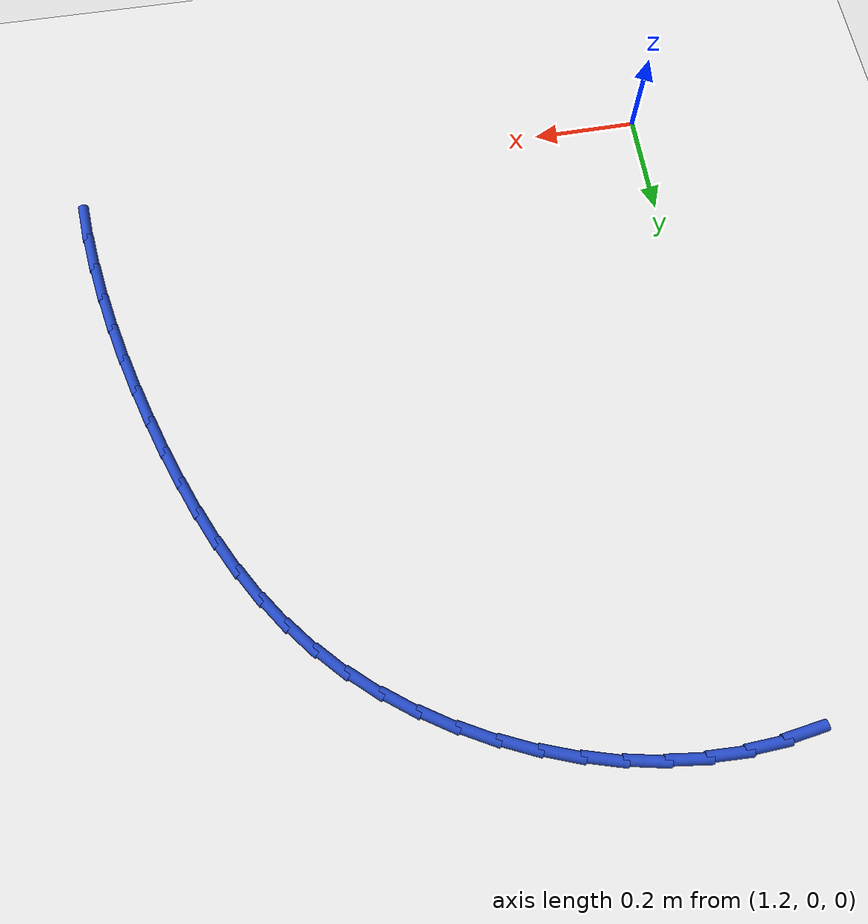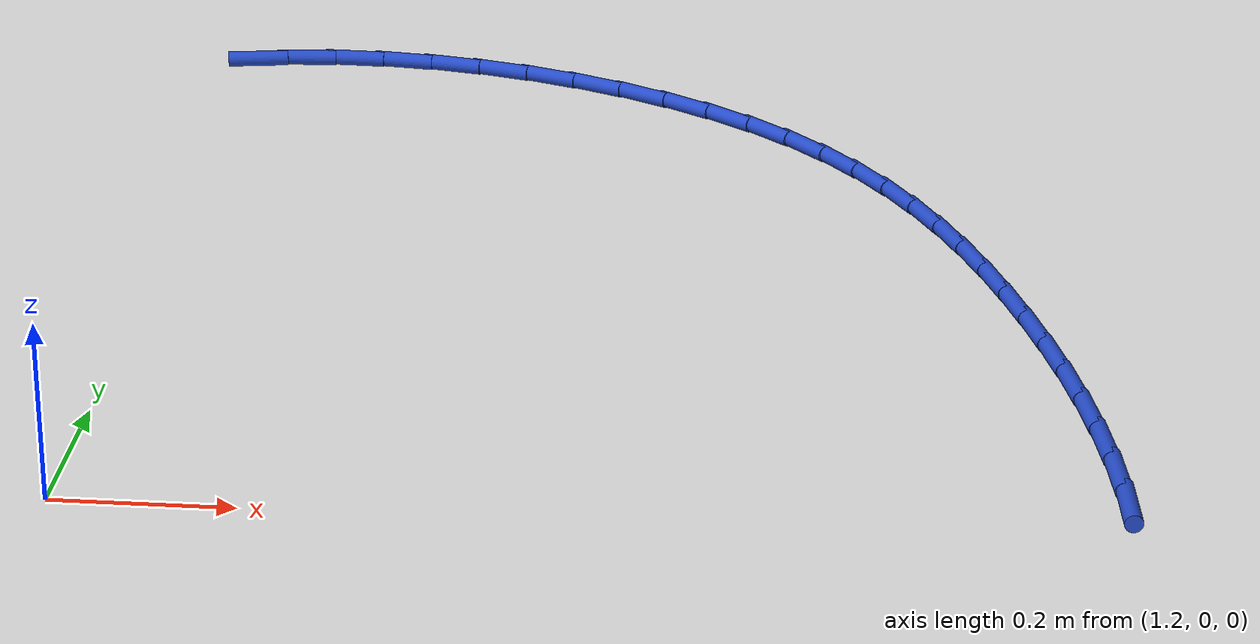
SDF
<sdf version="1.6">
 <world name="default">
  <model name="ground_plane">
   <static>1</static>
   <link name="link">
    <collision name="collision">
     <geometry><plane><normal>0 0 1</normal><size>100 100</size></plane></geometry>
     <surface><friction><ode><mu>100</mu><mu2>50</mu2></ode></friction></surface>
    </collision>
    <visual name="visual">
     <cast_shadows>0</cast_shadows>
     <geometry><plane><normal>0 0 1</normal><size>100 100</size></plane></geometry>
     <material>
      <script><uri>file://media/materials/scripts/gazebo.material</uri><name>Gazebo/WhiteGlow</name></script>
     </material>
    </visual>
   </link>
  </model>
  <model name="line">
   <link name="link_28">
    <pose>1.1943735471157382 1.2246333747343228 0.01 0 1.57 0.15824912851040113</pose>
    <collision name="collision">
     <geometry><cylinder><radius>0.01</radius><length>0.08</length></cylinder></geometry>
    </collision>
    <visual name="visual">
     <material>
      <script><name>Gazebo/Blue</name><uri>file://media/materials/scripts/gazebo.material</uri></script>
     </material>
     <geometry><cylinder><radius>0.01</radius><length>0.08</length></cylinder></geometry>
    </visual>
   </link>
   <link name="link_29">
    <pose>1.2585687431947317 1.234877868573096 0.01 0 1.57 0.05998212193106873</pose>
    <collision name="collision">
     <geometry><cylinder><radius>0.01</radius><length>0.08</length></cylinder></geometry>
    </collision>
    <visual name="visual">
     <material>
      <script><name>Gazebo/Blue</name><uri>file://media/materials/scripts/gazebo.material</uri></script>
     </material>
     <geometry><cylinder><radius>0.01</radius><length>0.08</length></cylinder></geometry>
    </visual>
   </link>
   <link name="link_30">
    <pose>1.3243550883895718 1.2388286123565146 0.01 0 1.57 -0.03090917757515493</pose>
    <collision name="collision">
     <geometry><cylinder><radius>0.01</radius><length>0.08</length></cylinder></geometry>
    </collision>
    <visual name="visual">
     <material>
      <script><name>Gazebo/Blue</name><uri>file://media/materials/scripts/gazebo.material</uri></script>
     </material>
     <geometry><cylinder><radius>0.01</radius><length>0.08</length></cylinder></geometry>
    </visual>
   </link>
   <link name="link_31">
    <pose>1.3911460125297228 1.2367635021268506 0.01 0 1.57 -0.11558416410384603</pose>
    <collision name="collision">
     <geometry><cylinder><radius>0.01</radius><length>0.08</length></cylinder></geometry>
    </collision>
    <visual name="visual">
     <material>
      <script><name>Gazebo/Blue</name><uri>file://media/materials/scripts/gazebo.material</uri></script>
     </material>
     <geometry><cylinder><radius>0.01</radius><length>0.08</length></cylinder></geometry>
    </visual>
   </link>
   <link name="link_32">
    <pose>1.4583549454446494 1.2289604339263744 0.01 0 1.57 -0.19531581050713295</pose>
    <collision name="collision">
     <geometry><cylinder><radius>0.01</radius><length>0.08</length></cylinder></geometry>
    </collision>
    <visual name="visual">
     <material>
      <script><name>Gazebo/Blue</name><uri>file://media/materials/scripts/gazebo.material</uri></script>
     </material>
     <geometry><cylinder><radius>0.01</radius><length>0.08</length></cylinder></geometry>
    </visual>
   </link>
   <link name="link_33">
    <pose>1.5253953169638157 1.215697303797358 0.01 0 1.57 -0.2714051873826836</pose>
    <collision name="collision">
     <geometry><cylinder><radius>0.01</radius><length>0.08</length></cylinder></geometry>
    </collision>
    <visual name="visual">
     <material>
      <script><name>Gazebo/Blue</name><uri>file://media/materials/scripts/gazebo.material</uri></script>
     </material>
     <geometry><cylinder><radius>0.01</radius><length>0.08</length></cylinder></geometry>
    </visual>
   </link>
   <link name="link_34">
    <pose>1.5916805569166859 1.1972520077820727 0.01 0 1.57 -0.3451451081822132</pose>
    <collision name="collision">
     <geometry><cylinder><radius>0.01</radius><length>0.08</length></cylinder></geometry>
    </collision>
    <visual name="visual">
     <material>
      <script><name>Gazebo/Blue</name><uri>file://media/materials/scripts/gazebo.material</uri></script>
     </material>
     <geometry><cylinder><radius>0.01</radius><length>0.08</length></cylinder></geometry>
    </visual>
   </link>
   <link name="link_35">
    <pose>1.6566240951327253 1.1739024419227901 0.01 0 1.57 -0.4178155056546058</pose>
    <collision name="collision">
     <geometry><cylinder><radius>0.01</radius><length>0.08</length></cylinder></geometry>
    </collision>
    <visual name="visual">
     <material>
      <script><name>Gazebo/Blue</name><uri>file://media/materials/scripts/gazebo.material</uri></script>
     </material>
     <geometry><cylinder><radius>0.01</radius><length>0.08</length></cylinder></geometry>
    </visual>
   </link>
   <link name="link_36">
    <pose>1.719639361441397 1.1459265022617813 0.01 0 1.57 -0.4906972851280054</pose>
    <collision name="collision">
     <geometry><cylinder><radius>0.01</radius><length>0.08</length></cylinder></geometry>
    </collision>
    <visual name="visual">
     <material>
      <script><name>Gazebo/Blue</name><uri>file://media/materials/scripts/gazebo.material</uri></script>
     </material>
     <geometry><cylinder><radius>0.01</radius><length>0.08</length></cylinder></geometry>
    </visual>
   </link>
   <link name="link_37">
    <pose>1.7801397856721661 1.1136020848413177 0.01 0 1.57 -0.5650950863593046</pose>
    <collision name="collision">
     <geometry><cylinder><radius>0.01</radius><length>0.08</length></cylinder></geometry>
    </collision>
    <visual name="visual">
     <material>
      <script><name>Gazebo/Blue</name><uri>file://media/materials/scripts/gazebo.material</uri></script>
     </material>
     <geometry><cylinder><radius>0.01</radius><length>0.08</length></cylinder></geometry>
    </visual>
   </link>
   <link name="link_38">
    <pose>1.8375387976544961 1.0772070857036709 0.01 0 1.57 -0.6423611532248215</pose>
    <collision name="collision">
     <geometry><cylinder><radius>0.01</radius><length>0.08</length></cylinder></geometry>
    </collision>
    <visual name="visual">
     <material>
      <script><name>Gazebo/Blue</name><uri>file://media/materials/scripts/gazebo.material</uri></script>
     </material>
     <geometry><cylinder><radius>0.01</radius><length>0.08</length></cylinder></geometry>
    </visual>
   </link>
   <link name="link_39">
    <pose>1.8912498272178524 1.0370194008911118 0.01 0 1.57 -0.7239099996223158</pose>
    <collision name="collision">
     <geometry><cylinder><radius>0.01</radius><length>0.08</length></cylinder></geometry>
    </collision>
    <visual name="visual">
     <material>
      <script><name>Gazebo/Blue</name><uri>file://media/materials/scripts/gazebo.material</uri></script>
     </material>
     <geometry><cylinder><radius>0.01</radius><length>0.08</length></cylinder></geometry>
    </visual>
   </link>
   <link name="link_40">
    <pose>1.9406864957181849 0.9933169163018857 0.01 0 1.57 -0.8088451748209496</pose>
    <collision name="collision">
     <geometry><cylinder><radius>0.01</radius><length>0.08</length></cylinder></geometry>
    </collision>
    <visual name="visual">
     <material>
      <script><name>Gazebo/Blue</name><uri>file://media/materials/scripts/gazebo.material</uri></script>
     </material>
     <geometry><cylinder><radius>0.01</radius><length>0.08</length></cylinder></geometry>
    </visual>
   </link>
   <link name="link_41">
    <pose>1.985486062356286 0.9463656730583296 0.01 0 1.57 -0.8902248833327521</pose>
    <collision name="collision">
     <geometry><cylinder><radius>0.01</radius><length>0.08</length></cylinder></geometry>
    </collision>
    <visual name="visual">
     <material>
      <script><name>Gazebo/Blue</name><uri>file://media/materials/scripts/gazebo.material</uri></script>
     </material>
     <geometry><cylinder><radius>0.01</radius><length>0.08</length></cylinder></geometry>
    </visual>
   </link>
   <link name="link_42">
    <pose>2.0259410410025196 0.8963970073126595 0.01 0 1.57 -0.9653107211206913</pose>
    <collision name="collision">
     <geometry><cylinder><radius>0.01</radius><length>0.08</length></cylinder></geometry>
    </collision>
    <visual name="visual">
     <material>
      <script><name>Gazebo/Blue</name><uri>file://media/materials/scripts/gazebo.material</uri></script>
     </material>
     <geometry><cylinder><radius>0.01</radius><length>0.08</length></cylinder></geometry>
    </visual>
   </link>
   <link name="link_43">
    <pose>2.062463329988079 0.8436359321272486 0.01 0 1.57 -1.0329801338505897</pose>
    <collision name="collision">
     <geometry><cylinder><radius>0.01</radius><length>0.08</length></cylinder></geometry>
    </collision>
    <visual name="visual">
     <material>
      <script><name>Gazebo/Blue</name><uri>file://media/materials/scripts/gazebo.material</uri></script>
     </material>
     <geometry><cylinder><radius>0.01</radius><length>0.08</length></cylinder></geometry>
    </visual>
   </link>
   <link name="link_44">
    <pose>2.0954648276441583 0.7883074605644698 0.01 0 1.57 -1.0925915169575326</pose>
    <collision name="collision">
     <geometry><cylinder><radius>0.01</radius><length>0.08</length></cylinder></geometry>
    </collision>
    <visual name="visual">
     <material>
      <script><name>Gazebo/Blue</name><uri>file://media/materials/scripts/gazebo.material</uri></script>
     </material>
     <geometry><cylinder><radius>0.01</radius><length>0.08</length></cylinder></geometry>
    </visual>
   </link>
   <link name="link_45">
    <pose>2.1253574323019513 0.7306366056866956 0.01 0 1.57 -1.1439034967666208</pose>
    <collision name="collision">
     <geometry><cylinder><radius>0.01</radius><length>0.08</length></cylinder></geometry>
    </collision>
    <visual name="visual">
     <material>
      <script><name>Gazebo/Blue</name><uri>file://media/materials/scripts/gazebo.material</uri></script>
     </material>
     <geometry><cylinder><radius>0.01</radius><length>0.08</length></cylinder></geometry>
    </visual>
   </link>
   <link name="link_46">
    <pose>2.1525530422926527 0.6708483805562995 0.01 0 1.57 -1.186964099256359</pose>
    <collision name="collision">
     <geometry><cylinder><radius>0.01</radius><length>0.08</length></cylinder></geometry>
    </collision>
    <visual name="visual">
     <material>
      <script><name>Gazebo/Blue</name><uri>file://media/materials/scripts/gazebo.material</uri></script>
     </material>
     <geometry><cylinder><radius>0.01</radius><length>0.08</length></cylinder></geometry>
    </visual>
   </link>
   <link name="link_47">
    <pose>2.1774635559474547 0.6091677982356537 0.01 0 1.57 -1.2220015375112812</pose>
    <collision name="collision">
     <geometry><cylinder><radius>0.01</radius><length>0.08</length></cylinder></geometry>
    </collision>
    <visual name="visual">
     <material>
      <script><name>Gazebo/Blue</name><uri>file://media/materials/scripts/gazebo.material</uri></script>
     </material>
     <geometry><cylinder><radius>0.01</radius><length>0.08</length></cylinder></geometry>
    </visual>
   </link>
   <link name="link_48">
    <pose>2.200500871597554 0.5458198717871315 0.01 0 1.57 -1.2502359497855249</pose>
    <collision name="collision">
     <geometry><cylinder><radius>0.01</radius><length>0.08</length></cylinder></geometry>
    </collision>
    <visual name="visual">
     <material>
      <script><name>Gazebo/Blue</name><uri>file://media/materials/scripts/gazebo.material</uri></script>
     </material>
     <geometry><cylinder><radius>0.01</radius><length>0.08</length></cylinder></geometry>
    </visual>
   </link>
   <link name="link_49">
    <pose>2.2220111763828276 0.4810320291558377 0.01 0 1.57 -1.2776601072536788</pose>
    <collision name="collision">
     <geometry><cylinder><radius>0.01</radius><length>0.08</length></cylinder></geometry>
    </collision>
    <visual name="visual">
     <material>
      <script><name>Gazebo/Blue</name><uri>file://media/materials/scripts/gazebo.material</uri></script>
     </material>
     <geometry><cylinder><radius>0.01</radius><length>0.08</length></cylinder></geometry>
    </visual>
   </link>
   <link name="link_50">
    <pose>2.241927573051922 0.4150468791159458 0.01 0 1.57 -1.3067602091544612</pose>
    <collision name="collision">
     <geometry><cylinder><radius>0.01</radius><length>0.08</length></cylinder></geometry>
    </collision>
    <visual name="visual">
     <material>
      <script><name>Gazebo/Blue</name><uri>file://media/materials/scripts/gazebo.material</uri></script>
     </material>
     <geometry><cylinder><radius>0.01</radius><length>0.08</length></cylinder></geometry>
    </visual>
   </link>
   <link name="link_51">
    <pose>2.260023033228986 0.34811291525180654 0.01 0 1.57 -1.3378404046645993</pose>
    <collision name="collision">
     <geometry><cylinder><radius>0.01</radius><length>0.08</length></cylinder></geometry>
    </collision>
    <visual name="visual">
     <material>
      <script><name>Gazebo/Blue</name><uri>file://media/materials/scripts/gazebo.material</uri></script>
     </material>
     <geometry><cylinder><radius>0.01</radius><length>0.08</length></cylinder></geometry>
    </visual>
   </link>
   <link name="link_52">
    <pose>2.2760701775344447 0.28047864404713874 0.01 0 1.57 -1.3712235561826975</pose>
    <collision name="collision">
     <geometry><cylinder><radius>0.01</radius><length>0.08</length></cylinder></geometry>
    </collision>
    <visual name="visual">
     <material>
      <script><name>Gazebo/Blue</name><uri>file://media/materials/scripts/gazebo.material</uri></script>
     </material>
     <geometry><cylinder><radius>0.01</radius><length>0.08</length></cylinder></geometry>
    </visual>
   </link>
   <link name="link_53">
    <pose>2.2898416265887187 0.2123925719856612 0.01 0 1.57 -1.4072607418451943</pose>
    <collision name="collision">
     <geometry><cylinder><radius>0.01</radius><length>0.08</length></cylinder></geometry>
    </collision>
    <visual name="visual">
     <material>
      <script><name>Gazebo/Blue</name><uri>file://media/materials/scripts/gazebo.material</uri></script>
     </material>
     <geometry><cylinder><radius>0.01</radius><length>0.08</length></cylinder></geometry>
    </visual>
   </link>
   <link name="link_54">
    <pose>2.301110001012231 0.1441032055510927 0.01 0 1.57 -1.4463345514984844</pose>
    <collision name="collision">
     <geometry><cylinder><radius>0.01</radius><length>0.08</length></cylinder></geometry>
    </collision>
    <visual name="visual">
     <material>
      <script><name>Gazebo/Blue</name><uri>file://media/materials/scripts/gazebo.material</uri></script>
     </material>
     <geometry><cylinder><radius>0.01</radius><length>0.08</length></cylinder></geometry>
    </visual>
   </link>
   <link name="link_55">
    <pose>2.3096479214254027 0.07585905122715202 0.01 0 1.57 -1.48886022117675</pose>
    <collision name="collision">
     <geometry><cylinder><radius>0.01</radius><length>0.08</length></cylinder></geometry>
    </collision>
    <visual name="visual">
     <material>
      <script><name>Gazebo/Blue</name><uri>file://media/materials/scripts/gazebo.material</uri></script>
     </material>
     <geometry><cylinder><radius>0.01</radius><length>0.08</length></cylinder></geometry>
    </visual>
   </link>
  </model>
 </world>
</sdf>
